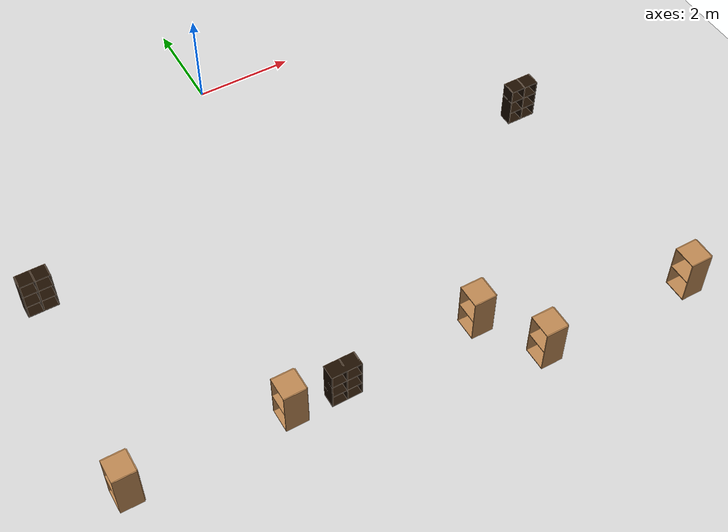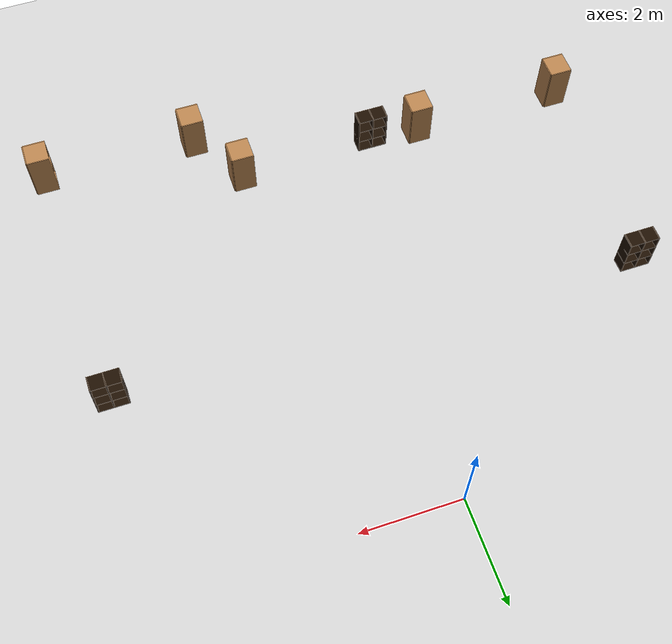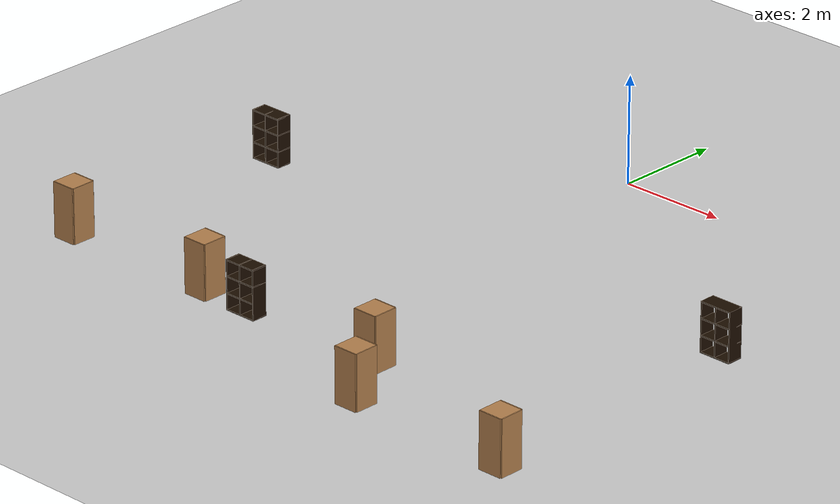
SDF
<sdf version="1.6">
 <world name="default">
  <model name="ground_plane">
   <static>1</static>
   <link name="link">
    <collision name="collision">
     <geometry><plane><normal>0 0 1</normal><size>100 100</size></plane></geometry>
     <surface>
      <contact><collide_bitmask>65535</collide_bitmask></contact>
      <friction><ode><mu>100</mu><mu2>50</mu2></ode></friction>
     </surface>
    </collision>
    <visual name="visual">
     <cast_shadows>0</cast_shadows>
     <geometry><plane><normal>0 0 1</normal><size>100 100</size></plane></geometry>
     <material>
      <script><uri>file://media/materials/scripts/gazebo.material</uri><name>Gazebo/Grey</name></script>
     </material>
    </visual>
   </link>
  </model>
  <model name="cabinet">
   <static>1</static>
   <link name="cabinet_bottom_plate">
    <inertial>
     <pose>0 0 -1 0 -0 0</pose>
     <inertia><ixx>2.05</ixx><ixy>0</ixy><ixz>0</ixz><iyy>2.05</iyy><iyz>0</iyz><izz>2.05</izz></inertia>
     <mass>25</mass>
    </inertial>
    <collision name="cabinet_bottom_plate_geom">
     <pose>0 0 0.01 0 -0 0</pose>
     <geometry><box><size>0.45 0.45 0.02</size></box></geometry>
    </collision>
    <visual name="cabinet_bottom_plate_geom_visual">
     <pose>0 0 0.01 0 -0 0</pose>
     <geometry><box><size>0.45 0.45 0.02</size></box></geometry>
     <material>
      <script><uri>file://media/materials/scripts/gazebo.material</uri><name>Gazebo/Wood</name></script>
     </material>
    </visual>
    <collision name="cabinet_bottom_plate_geom_cabinet_back_plate">
     <pose>0.235 0 0.51 0 -0 0</pose>
     <geometry><box><size>0.02 0.45 1.02</size></box></geometry>
    </collision>
    <visual name="cabinet_bottom_plate_geom_cabinet_back_plate_visual">
     <pose>0.235 0 0.51 0 -0 0</pose>
     <geometry><box><size>0.02 0.45 1.02</size></box></geometry>
     <material>
      <script><uri>file://media/materials/scripts/gazebo.material</uri><name>Gazebo/Wood</name></script>
     </material>
    </visual>
    <collision name="cabinet_bottom_plate_geom_cabinet_left_plate">
     <pose>0 0.235 0.51 0 -0 0</pose>
     <geometry><box><size>0.45 0.02 1.02</size></box></geometry>
    </collision>
    <visual name="cabinet_bottom_plate_geom_cabinet_left_plate_visual">
     <pose>0 0.235 0.51 0 -0 0</pose>
     <geometry><box><size>0.45 0.02 1.02</size></box></geometry>
     <material>
      <script><uri>file://media/materials/scripts/gazebo.material</uri><name>Gazebo/Wood</name></script>
     </material>
    </visual>
    <collision name="cabinet_bottom_plate_geom_cabinet_middle_plate">
     <pose>0 0 0.51 0 -0 0</pose>
     <geometry><box><size>0.45 0.45 0.02</size></box></geometry>
    </collision>
    <visual name="cabinet_bottom_plate_geom_cabinet_middle_plate_visual">
     <pose>0 0 0.51 0 -0 0</pose>
     <geometry><box><size>0.45 0.45 0.02</size></box></geometry>
     <material>
      <script><uri>file://media/materials/scripts/gazebo.material</uri><name>Gazebo/Wood</name></script>
     </material>
    </visual>
    <collision name="cabinet_bottom_plate_geom_cabinet_right_plate">
     <pose>0 -0.235 0.51 0 -0 0</pose>
     <geometry><box><size>0.45 0.02 1.02</size></box></geometry>
    </collision>
    <visual name="cabinet_bottom_plate_geom_cabinet_right_plate_visual">
     <pose>0 -0.235 0.51 0 -0 0</pose>
     <geometry><box><size>0.45 0.02 1.02</size></box></geometry>
     <material>
      <script><uri>file://media/materials/scripts/gazebo.material</uri><name>Gazebo/Wood</name></script>
     </material>
    </visual>
    <collision name="cabinet_bottom_plate_geom_cabinet_top_plate">
     <pose>0 0 1.01 0 -0 0</pose>
     <geometry><box><size>0.45 0.45 0.02</size></box></geometry>
    </collision>
    <visual name="cabinet_bottom_plate_geom_cabinet_top_plate_visual">
     <pose>0 0 1.01 0 -0 0</pose>
     <geometry><box><size>0.45 0.45 0.02</size></box></geometry>
     <material>
      <script><uri>file://media/materials/scripts/gazebo.material</uri><name>Gazebo/Wood</name></script>
     </material>
    </visual>
   </link>
   <pose>-5.20758 -7.98036 0 0 -0 0</pose>
  </model>
  <model name="cabinet_0">
   <static>1</static>
   <link name="cabinet_bottom_plate">
    <inertial>
     <pose>0 0 -1 0 -0 0</pose>
     <inertia><ixx>2.05</ixx><ixy>0</ixy><ixz>0</ixz><iyy>2.05</iyy><iyz>0</iyz><izz>2.05</izz></inertia>
     <mass>25</mass>
    </inertial>
    <collision name="cabinet_bottom_plate_geom">
     <pose>0 0 0.01 0 -0 0</pose>
     <geometry><box><size>0.45 0.45 0.02</size></box></geometry>
    </collision>
    <visual name="cabinet_bottom_plate_geom_visual">
     <pose>0 0 0.01 0 -0 0</pose>
     <geometry><box><size>0.45 0.45 0.02</size></box></geometry>
     <material>
      <script><uri>file://media/materials/scripts/gazebo.material</uri><name>Gazebo/Wood</name></script>
     </material>
    </visual>
    <collision name="cabinet_bottom_plate_geom_cabinet_back_plate">
     <pose>0.235 0 0.51 0 -0 0</pose>
     <geometry><box><size>0.02 0.45 1.02</size></box></geometry>
    </collision>
    <visual name="cabinet_bottom_plate_geom_cabinet_back_plate_visual">
     <pose>0.235 0 0.51 0 -0 0</pose>
     <geometry><box><size>0.02 0.45 1.02</size></box></geometry>
     <material>
      <script><uri>file://media/materials/scripts/gazebo.material</uri><name>Gazebo/Wood</name></script>
     </material>
    </visual>
    <collision name="cabinet_bottom_plate_geom_cabinet_left_plate">
     <pose>0 0.235 0.51 0 -0 0</pose>
     <geometry><box><size>0.45 0.02 1.02</size></box></geometry>
    </collision>
    <visual name="cabinet_bottom_plate_geom_cabinet_left_plate_visual">
     <pose>0 0.235 0.51 0 -0 0</pose>
     <geometry><box><size>0.45 0.02 1.02</size></box></geometry>
     <material>
      <script><uri>file://media/materials/scripts/gazebo.material</uri><name>Gazebo/Wood</name></script>
     </material>
    </visual>
    <collision name="cabinet_bottom_plate_geom_cabinet_middle_plate">
     <pose>0 0 0.51 0 -0 0</pose>
     <geometry><box><size>0.45 0.45 0.02</size></box></geometry>
    </collision>
    <visual name="cabinet_bottom_plate_geom_cabinet_middle_plate_visual">
     <pose>0 0 0.51 0 -0 0</pose>
     <geometry><box><size>0.45 0.45 0.02</size></box></geometry>
     <material>
      <script><uri>file://media/materials/scripts/gazebo.material</uri><name>Gazebo/Wood</name></script>
     </material>
    </visual>
    <collision name="cabinet_bottom_plate_geom_cabinet_right_plate">
     <pose>0 -0.235 0.51 0 -0 0</pose>
     <geometry><box><size>0.45 0.02 1.02</size></box></geometry>
    </collision>
    <visual name="cabinet_bottom_plate_geom_cabinet_right_plate_visual">
     <pose>0 -0.235 0.51 0 -0 0</pose>
     <geometry><box><size>0.45 0.02 1.02</size></box></geometry>
     <material>
      <script><uri>file://media/materials/scripts/gazebo.material</uri><name>Gazebo/Wood</name></script>
     </material>
    </visual>
    <collision name="cabinet_bottom_plate_geom_cabinet_top_plate">
     <pose>0 0 1.01 0 -0 0</pose>
     <geometry><box><size>0.45 0.45 0.02</size></box></geometry>
    </collision>
    <visual name="cabinet_bottom_plate_geom_cabinet_top_plate_visual">
     <pose>0 0 1.01 0 -0 0</pose>
     <geometry><box><size>0.45 0.45 0.02</size></box></geometry>
     <material>
      <script><uri>file://media/materials/scripts/gazebo.material</uri><name>Gazebo/Wood</name></script>
     </material>
    </visual>
   </link>
   <pose>-2.09411 -7.98099 0 0 -0 0</pose>
  </model>
  <model name="cabinet_1">
   <static>1</static>
   <link name="cabinet_bottom_plate">
    <inertial>
     <pose>0 0 -1 0 -0 0</pose>
     <inertia><ixx>2.05</ixx><ixy>0</ixy><ixz>0</ixz><iyy>2.05</iyy><iyz>0</iyz><izz>2.05</izz></inertia>
     <mass>25</mass>
    </inertial>
    <collision name="cabinet_bottom_plate_geom">
     <pose>0 0 0.01 0 -0 0</pose>
     <geometry><box><size>0.45 0.45 0.02</size></box></geometry>
    </collision>
    <visual name="cabinet_bottom_plate_geom_visual">
     <pose>0 0 0.01 0 -0 0</pose>
     <geometry><box><size>0.45 0.45 0.02</size></box></geometry>
     <material>
      <script><uri>file://media/materials/scripts/gazebo.material</uri><name>Gazebo/Wood</name></script>
     </material>
    </visual>
    <collision name="cabinet_bottom_plate_geom_cabinet_back_plate">
     <pose>0.235 0 0.51 0 -0 0</pose>
     <geometry><box><size>0.02 0.45 1.02</size></box></geometry>
    </collision>
    <visual name="cabinet_bottom_plate_geom_cabinet_back_plate_visual">
     <pose>0.235 0 0.51 0 -0 0</pose>
     <geometry><box><size>0.02 0.45 1.02</size></box></geometry>
     <material>
      <script><uri>file://media/materials/scripts/gazebo.material</uri><name>Gazebo/Wood</name></script>
     </material>
    </visual>
    <collision name="cabinet_bottom_plate_geom_cabinet_left_plate">
     <pose>0 0.235 0.51 0 -0 0</pose>
     <geometry><box><size>0.45 0.02 1.02</size></box></geometry>
    </collision>
    <visual name="cabinet_bottom_plate_geom_cabinet_left_plate_visual">
     <pose>0 0.235 0.51 0 -0 0</pose>
     <geometry><box><size>0.45 0.02 1.02</size></box></geometry>
     <material>
      <script><uri>file://media/materials/scripts/gazebo.material</uri><name>Gazebo/Wood</name></script>
     </material>
    </visual>
    <collision name="cabinet_bottom_plate_geom_cabinet_middle_plate">
     <pose>0 0 0.51 0 -0 0</pose>
     <geometry><box><size>0.45 0.45 0.02</size></box></geometry>
    </collision>
    <visual name="cabinet_bottom_plate_geom_cabinet_middle_plate_visual">
     <pose>0 0 0.51 0 -0 0</pose>
     <geometry><box><size>0.45 0.45 0.02</size></box></geometry>
     <material>
      <script><uri>file://media/materials/scripts/gazebo.material</uri><name>Gazebo/Wood</name></script>
     </material>
    </visual>
    <collision name="cabinet_bottom_plate_geom_cabinet_right_plate">
     <pose>0 -0.235 0.51 0 -0 0</pose>
     <geometry><box><size>0.45 0.02 1.02</size></box></geometry>
    </collision>
    <visual name="cabinet_bottom_plate_geom_cabinet_right_plate_visual">
     <pose>0 -0.235 0.51 0 -0 0</pose>
     <geometry><box><size>0.45 0.02 1.02</size></box></geometry>
     <material>
      <script><uri>file://media/materials/scripts/gazebo.material</uri><name>Gazebo/Wood</name></script>
     </material>
    </visual>
    <collision name="cabinet_bottom_plate_geom_cabinet_top_plate">
     <pose>0 0 1.01 0 -0 0</pose>
     <geometry><box><size>0.45 0.45 0.02</size></box></geometry>
    </collision>
    <visual name="cabinet_bottom_plate_geom_cabinet_top_plate_visual">
     <pose>0 0 1.01 0 -0 0</pose>
     <geometry><box><size>0.45 0.45 0.02</size></box></geometry>
     <material>
      <script><uri>file://media/materials/scripts/gazebo.material</uri><name>Gazebo/Wood</name></script>
     </material>
    </visual>
   </link>
   <pose>2.48169 -9.13605 0 0 -0 0</pose>
  </model>
  <model name="cabinet_2">
   <static>1</static>
   <link name="cabinet_bottom_plate">
    <inertial>
     <pose>0 0 -1 0 -0 0</pose>
     <inertia><ixx>2.05</ixx><ixy>0</ixy><ixz>0</ixz><iyy>2.05</iyy><iyz>0</iyz><izz>2.05</izz></inertia>
     <mass>25</mass>
    </inertial>
    <collision name="cabinet_bottom_plate_geom">
     <pose>0 0 0.01 0 -0 0</pose>
     <geometry><box><size>0.45 0.45 0.02</size></box></geometry>
    </collision>
    <visual name="cabinet_bottom_plate_geom_visual">
     <pose>0 0 0.01 0 -0 0</pose>
     <geometry><box><size>0.45 0.45 0.02</size></box></geometry>
     <material>
      <script><uri>file://media/materials/scripts/gazebo.material</uri><name>Gazebo/Wood</name></script>
     </material>
    </visual>
    <collision name="cabinet_bottom_plate_geom_cabinet_back_plate">
     <pose>0.235 0 0.51 0 -0 0</pose>
     <geometry><box><size>0.02 0.45 1.02</size></box></geometry>
    </collision>
    <visual name="cabinet_bottom_plate_geom_cabinet_back_plate_visual">
     <pose>0.235 0 0.51 0 -0 0</pose>
     <geometry><box><size>0.02 0.45 1.02</size></box></geometry>
     <material>
      <script><uri>file://media/materials/scripts/gazebo.material</uri><name>Gazebo/Wood</name></script>
     </material>
    </visual>
    <collision name="cabinet_bottom_plate_geom_cabinet_left_plate">
     <pose>0 0.235 0.51 0 -0 0</pose>
     <geometry><box><size>0.45 0.02 1.02</size></box></geometry>
    </collision>
    <visual name="cabinet_bottom_plate_geom_cabinet_left_plate_visual">
     <pose>0 0.235 0.51 0 -0 0</pose>
     <geometry><box><size>0.45 0.02 1.02</size></box></geometry>
     <material>
      <script><uri>file://media/materials/scripts/gazebo.material</uri><name>Gazebo/Wood</name></script>
     </material>
    </visual>
    <collision name="cabinet_bottom_plate_geom_cabinet_middle_plate">
     <pose>0 0 0.51 0 -0 0</pose>
     <geometry><box><size>0.45 0.45 0.02</size></box></geometry>
    </collision>
    <visual name="cabinet_bottom_plate_geom_cabinet_middle_plate_visual">
     <pose>0 0 0.51 0 -0 0</pose>
     <geometry><box><size>0.45 0.45 0.02</size></box></geometry>
     <material>
      <script><uri>file://media/materials/scripts/gazebo.material</uri><name>Gazebo/Wood</name></script>
     </material>
    </visual>
    <collision name="cabinet_bottom_plate_geom_cabinet_right_plate">
     <pose>0 -0.235 0.51 0 -0 0</pose>
     <geometry><box><size>0.45 0.02 1.02</size></box></geometry>
    </collision>
    <visual name="cabinet_bottom_plate_geom_cabinet_right_plate_visual">
     <pose>0 -0.235 0.51 0 -0 0</pose>
     <geometry><box><size>0.45 0.02 1.02</size></box></geometry>
     <material>
      <script><uri>file://media/materials/scripts/gazebo.material</uri><name>Gazebo/Wood</name></script>
     </material>
    </visual>
    <collision name="cabinet_bottom_plate_geom_cabinet_top_plate">
     <pose>0 0 1.01 0 -0 0</pose>
     <geometry><box><size>0.45 0.45 0.02</size></box></geometry>
    </collision>
    <visual name="cabinet_bottom_plate_geom_cabinet_top_plate_visual">
     <pose>0 0 1.01 0 -0 0</pose>
     <geometry><box><size>0.45 0.45 0.02</size></box></geometry>
     <material>
      <script><uri>file://media/materials/scripts/gazebo.material</uri><name>Gazebo/Wood</name></script>
     </material>
    </visual>
   </link>
   <pose>5.65055 -9.1933 0 0 -0 0</pose>
  </model>
  <model name="6_Cube_StorageE">
   <link name="Wall_0">
    <pose>0 0 0.01 0 -0 0</pose>
    <inertial>
     <mass>1.6201</mass>
     <inertia><ixx>0.0119</ixx><iyy>0.0631</iyy><izz>0.0513</izz><ixy>0</ixy><ixz>0</ixz><iyz>0</iyz></inertia>
    </inertial>
    <collision name="Wall_0_Collision"><geometry><box><size>0.616 0.296 0.02</size></box></geometry></collision>
    <visual name="Wall_0_Visual">
     <geometry><box><size>0.616 0.296 0.02</size></box></geometry>
     <material>
      <script><uri>file://media/materials/scripts/gazebo.material</uri><name>Gazebo/Grey</name></script>
      <ambient>0.105882 0.0509804 0 1</ambient>
     </material>
    </visual>
   </link>
   <joint name="0_2" type="fixed">
    <pose>-0.308 0 0 0 -0 0</pose>
    <parent>Wall_2</parent>
    <child>Wall_0</child>
    <axis>
     <xyz>1 0 0</xyz>
     <use_parent_model_frame>0</use_parent_model_frame>
     <limit><lower>-1e+16</lower><upper>1e+16</upper></limit>
    </axis>
   </joint>
   <joint name="0_12" type="fixed">
    <parent>Wall_12</parent>
    <child>Wall_0</child>
    <axis>
     <xyz>0 0 1</xyz>
     <use_parent_model_frame>0</use_parent_model_frame>
     <limit><lower>-1e+16</lower><upper>1e+16</upper></limit>
    </axis>
   </joint>
   <joint name="0_4" type="fixed">
    <pose>0.308 0 0 0 -0 0</pose>
    <parent>Wall_4</parent>
    <child>Wall_0</child>
    <axis>
     <xyz>1 0 0</xyz>
     <use_parent_model_frame>0</use_parent_model_frame>
     <limit><lower>-1e+16</lower><upper>1e+16</upper></limit>
    </axis>
   </joint>
   <link name="Wall_10">
    <pose>0 0 0.61 0 -0 0</pose>
    <inertial>
     <mass>1.6201</mass>
     <inertia><ixx>0.0119</ixx><iyy>0.0631</iyy><izz>0.0513</izz><ixy>0</ixy><ixz>0</ixz><iyz>0</iyz></inertia>
    </inertial>
    <collision name="Wall_10_Collision"><geometry><box><size>0.616 0.296 0.02</size></box></geometry></collision>
    <visual name="Wall_10_Visual">
     <geometry><box><size>0.616 0.296 0.02</size></box></geometry>
     <material>
      <script><uri>file://media/materials/scripts/gazebo.material</uri><name>Gazebo/Grey</name></script>
      <ambient>0.105882 0.0509804 0 1</ambient>
     </material>
    </visual>
   </link>
   <joint name="10_2" type="fixed">
    <pose>-0.308 0 0 0 -0 0</pose>
    <parent>Wall_2</parent>
    <child>Wall_10</child>
    <axis>
     <xyz>1 0 0</xyz>
     <use_parent_model_frame>0</use_parent_model_frame>
     <limit><lower>-1e+16</lower><upper>1e+16</upper></limit>
    </axis>
   </joint>
   <joint name="10_12" type="fixed">
    <parent>Wall_12</parent>
    <child>Wall_10</child>
    <axis>
     <xyz>0 0 1</xyz>
     <use_parent_model_frame>0</use_parent_model_frame>
     <limit><lower>-1e+16</lower><upper>1e+16</upper></limit>
    </axis>
   </joint>
   <joint name="10_4" type="fixed">
    <pose>0.308 0 0 0 -0 0</pose>
    <parent>Wall_4</parent>
    <child>Wall_10</child>
    <axis>
     <xyz>1 0 0</xyz>
     <use_parent_model_frame>0</use_parent_model_frame>
     <limit><lower>-1e+16</lower><upper>1e+16</upper></limit>
    </axis>
   </joint>
   <link name="Wall_12">
    <pose>0 0 0.4575 0 -0 0</pose>
    <inertial>
     <mass>2.4065</mass>
     <inertia><ixx>0.0177</ixx><iyy>0.1855</iyy><izz>0.168</izz><ixy>0</ixy><ixz>0</ixz><iyz>0</iyz></inertia>
    </inertial>
    <collision name="Wall_12_Collision"><geometry><box><size>0.02 0.296 0.915</size></box></geometry></collision>
    <visual name="Wall_12_Visual">
     <geometry><box><size>0.02 0.296 0.915</size></box></geometry>
     <material>
      <script><uri>file://media/materials/scripts/gazebo.material</uri><name>Gazebo/Grey</name></script>
      <ambient>0.105882 0.0509804 0 1</ambient>
     </material>
    </visual>
   </link>
   <link name="Wall_2">
    <pose>-0.298 0 0.4575 0 -0 0</pose>
    <inertial>
     <mass>2.4065</mass>
     <inertia><ixx>0.0177</ixx><iyy>0.1855</iyy><izz>0.168</izz><ixy>0</ixy><ixz>0</ixz><iyz>0</iyz></inertia>
    </inertial>
    <collision name="Wall_2_Collision"><geometry><box><size>0.02 0.296 0.915</size></box></geometry></collision>
    <visual name="Wall_2_Visual">
     <geometry><box><size>0.02 0.296 0.915</size></box></geometry>
     <material>
      <script><uri>file://media/materials/scripts/gazebo.material</uri><name>Gazebo/Grey</name></script>
      <ambient>0.105882 0.0509804 0 1</ambient>
     </material>
    </visual>
   </link>
   <link name="Wall_4">
    <pose>0.298 0 0.4575 0 -0 0</pose>
    <inertial>
     <mass>2.4065</mass>
     <inertia><ixx>0.0177</ixx><iyy>0.1855</iyy><izz>0.168</izz><ixy>0</ixy><ixz>0</ixz><iyz>0</iyz></inertia>
    </inertial>
    <collision name="Wall_4_Collision"><geometry><box><size>0.02 0.296 0.915</size></box></geometry></collision>
    <visual name="Wall_4_Visual">
     <geometry><box><size>0.02 0.296 0.915</size></box></geometry>
     <material>
      <script><uri>file://media/materials/scripts/gazebo.material</uri><name>Gazebo/Grey</name></script>
      <ambient>0.105882 0.0509804 0 1</ambient>
     </material>
    </visual>
   </link>
   <link name="Wall_6">
    <pose>0 0 0.905 0 -0 0</pose>
    <inertial>
     <mass>1.6201</mass>
     <inertia><ixx>0.0119</ixx><iyy>0.0631</iyy><izz>0.0513</izz><ixy>0</ixy><ixz>0</ixz><iyz>0</iyz></inertia>
    </inertial>
    <collision name="Wall_6_Collision"><geometry><box><size>0.616 0.296 0.02</size></box></geometry></collision>
    <visual name="Wall_6_Visual">
     <geometry><box><size>0.616 0.296 0.02</size></box></geometry>
     <material>
      <script><uri>file://media/materials/scripts/gazebo.material</uri><name>Gazebo/Grey</name></script>
      <ambient>0.105882 0.0509804 0 1</ambient>
     </material>
    </visual>
   </link>
   <joint name="6_2" type="fixed">
    <pose>-0.308 0 0 0 -0 0</pose>
    <parent>Wall_2</parent>
    <child>Wall_6</child>
    <axis>
     <xyz>2 0 0</xyz>
     <use_parent_model_frame>0</use_parent_model_frame>
     <limit><lower>-1e+16</lower><upper>1e+16</upper></limit>
    </axis>
   </joint>
   <joint name="6_12" type="fixed">
    <parent>Wall_12</parent>
    <child>Wall_6</child>
    <axis>
     <xyz>0 0 1</xyz>
     <use_parent_model_frame>0</use_parent_model_frame>
     <limit><lower>-1e+16</lower><upper>1e+16</upper></limit>
    </axis>
   </joint>
   <joint name="6_4" type="fixed">
    <pose>0.308 0 0 0 -0 0</pose>
    <parent>Wall_4</parent>
    <child>Wall_6</child>
    <axis>
     <xyz>1 0 0</xyz>
     <use_parent_model_frame>0</use_parent_model_frame>
     <limit><lower>-1e+16</lower><upper>1e+16</upper></limit>
    </axis>
   </joint>
   <link name="Wall_8">
    <pose>0 0 0.305 0 -0 0</pose>
    <inertial>
     <mass>1.6201</mass>
     <inertia><ixx>0.0119</ixx><iyy>0.0631</iyy><izz>0.0513</izz><ixy>0</ixy><ixz>0</ixz><iyz>0</iyz></inertia>
    </inertial>
    <collision name="Wall_8_Collision"><geometry><box><size>0.616 0.296 0.02</size></box></geometry></collision>
    <visual name="Wall_8_Visual">
     <geometry><box><size>0.616 0.296 0.02</size></box></geometry>
     <material>
      <script><uri>file://media/materials/scripts/gazebo.material</uri><name>Gazebo/Grey</name></script>
      <ambient>0.105882 0.0509804 0 1</ambient>
     </material>
    </visual>
   </link>
   <joint name="8_2" type="fixed">
    <pose>-0.308 0 0 0 -0 0</pose>
    <parent>Wall_2</parent>
    <child>Wall_8</child>
    <axis>
     <xyz>1 0 0</xyz>
     <use_parent_model_frame>0</use_parent_model_frame>
     <limit><lower>-1e+16</lower><upper>1e+16</upper></limit>
    </axis>
   </joint>
   <joint name="8_12" type="fixed">
    <parent>Wall_12</parent>
    <child>Wall_8</child>
    <axis>
     <xyz>0 0 1</xyz>
     <use_parent_model_frame>0</use_parent_model_frame>
     <limit><lower>-1e+16</lower><upper>1e+16</upper></limit>
    </axis>
   </joint>
   <joint name="8_4" type="fixed">
    <pose>0.308 0 0 0 -0 0</pose>
    <parent>Wall_4</parent>
    <child>Wall_8</child>
    <axis>
     <xyz>1 0 0</xyz>
     <use_parent_model_frame>0</use_parent_model_frame>
     <limit><lower>-1e+16</lower><upper>1e+16</upper></limit>
    </axis>
   </joint>
   <static>1</static>
   <pose>-5.01324 -3.5483 0 0 -0 0</pose>
  </model>
  <model name="6_Cube_StorageE_0">
   <link name="Wall_0">
    <pose>0 0 0.01 0 -0 0</pose>
    <inertial>
     <mass>1.6201</mass>
     <inertia><ixx>0.0119</ixx><iyy>0.0631</iyy><izz>0.0513</izz><ixy>0</ixy><ixz>0</ixz><iyz>0</iyz></inertia>
    </inertial>
    <collision name="Wall_0_Collision"><geometry><box><size>0.616 0.296 0.02</size></box></geometry></collision>
    <visual name="Wall_0_Visual">
     <geometry><box><size>0.616 0.296 0.02</size></box></geometry>
     <material>
      <script><uri>file://media/materials/scripts/gazebo.material</uri><name>Gazebo/Grey</name></script>
      <ambient>0.105882 0.0509804 0 1</ambient>
     </material>
    </visual>
   </link>
   <joint name="0_2" type="fixed">
    <pose>-0.308 0 0 0 -0 0</pose>
    <parent>Wall_2</parent>
    <child>Wall_0</child>
    <axis>
     <xyz>1 0 0</xyz>
     <use_parent_model_frame>0</use_parent_model_frame>
     <limit><lower>-1e+16</lower><upper>1e+16</upper></limit>
    </axis>
   </joint>
   <joint name="0_12" type="fixed">
    <parent>Wall_12</parent>
    <child>Wall_0</child>
    <axis>
     <xyz>0 0 1</xyz>
     <use_parent_model_frame>0</use_parent_model_frame>
     <limit><lower>-1e+16</lower><upper>1e+16</upper></limit>
    </axis>
   </joint>
   <joint name="0_4" type="fixed">
    <pose>0.308 0 0 0 -0 0</pose>
    <parent>Wall_4</parent>
    <child>Wall_0</child>
    <axis>
     <xyz>1 0 0</xyz>
     <use_parent_model_frame>0</use_parent_model_frame>
     <limit><lower>-1e+16</lower><upper>1e+16</upper></limit>
    </axis>
   </joint>
   <link name="Wall_10">
    <pose>0 0 0.61 0 -0 0</pose>
    <inertial>
     <mass>1.6201</mass>
     <inertia><ixx>0.0119</ixx><iyy>0.0631</iyy><izz>0.0513</izz><ixy>0</ixy><ixz>0</ixz><iyz>0</iyz></inertia>
    </inertial>
    <collision name="Wall_10_Collision"><geometry><box><size>0.616 0.296 0.02</size></box></geometry></collision>
    <visual name="Wall_10_Visual">
     <geometry><box><size>0.616 0.296 0.02</size></box></geometry>
     <material>
      <script><uri>file://media/materials/scripts/gazebo.material</uri><name>Gazebo/Grey</name></script>
      <ambient>0.105882 0.0509804 0 1</ambient>
     </material>
    </visual>
   </link>
   <joint name="10_2" type="fixed">
    <pose>-0.308 0 0 0 -0 0</pose>
    <parent>Wall_2</parent>
    <child>Wall_10</child>
    <axis>
     <xyz>1 0 0</xyz>
     <use_parent_model_frame>0</use_parent_model_frame>
     <limit><lower>-1e+16</lower><upper>1e+16</upper></limit>
    </axis>
   </joint>
   <joint name="10_12" type="fixed">
    <parent>Wall_12</parent>
    <child>Wall_10</child>
    <axis>
     <xyz>0 0 1</xyz>
     <use_parent_model_frame>0</use_parent_model_frame>
     <limit><lower>-1e+16</lower><upper>1e+16</upper></limit>
    </axis>
   </joint>
   <joint name="10_4" type="fixed">
    <pose>0.308 0 0 0 -0 0</pose>
    <parent>Wall_4</parent>
    <child>Wall_10</child>
    <axis>
     <xyz>1 0 0</xyz>
     <use_parent_model_frame>0</use_parent_model_frame>
     <limit><lower>-1e+16</lower><upper>1e+16</upper></limit>
    </axis>
   </joint>
   <link name="Wall_12">
    <pose>0 0 0.4575 0 -0 0</pose>
    <inertial>
     <mass>2.4065</mass>
     <inertia><ixx>0.0177</ixx><iyy>0.1855</iyy><izz>0.168</izz><ixy>0</ixy><ixz>0</ixz><iyz>0</iyz></inertia>
    </inertial>
    <collision name="Wall_12_Collision"><geometry><box><size>0.02 0.296 0.915</size></box></geometry></collision>
    <visual name="Wall_12_Visual">
     <geometry><box><size>0.02 0.296 0.915</size></box></geometry>
     <material>
      <script><uri>file://media/materials/scripts/gazebo.material</uri><name>Gazebo/Grey</name></script>
      <ambient>0.105882 0.0509804 0 1</ambient>
     </material>
    </visual>
   </link>
   <link name="Wall_2">
    <pose>-0.298 0 0.4575 0 -0 0</pose>
    <inertial>
     <mass>2.4065</mass>
     <inertia><ixx>0.0177</ixx><iyy>0.1855</iyy><izz>0.168</izz><ixy>0</ixy><ixz>0</ixz><iyz>0</iyz></inertia>
    </inertial>
    <collision name="Wall_2_Collision"><geometry><box><size>0.02 0.296 0.915</size></box></geometry></collision>
    <visual name="Wall_2_Visual">
     <geometry><box><size>0.02 0.296 0.915</size></box></geometry>
     <material>
      <script><uri>file://media/materials/scripts/gazebo.material</uri><name>Gazebo/Grey</name></script>
      <ambient>0.105882 0.0509804 0 1</ambient>
     </material>
    </visual>
   </link>
   <link name="Wall_4">
    <pose>0.298 0 0.4575 0 -0 0</pose>
    <inertial>
     <mass>2.4065</mass>
     <inertia><ixx>0.0177</ixx><iyy>0.1855</iyy><izz>0.168</izz><ixy>0</ixy><ixz>0</ixz><iyz>0</iyz></inertia>
    </inertial>
    <collision name="Wall_4_Collision"><geometry><box><size>0.02 0.296 0.915</size></box></geometry></collision>
    <visual name="Wall_4_Visual">
     <geometry><box><size>0.02 0.296 0.915</size></box></geometry>
     <material>
      <script><uri>file://media/materials/scripts/gazebo.material</uri><name>Gazebo/Grey</name></script>
      <ambient>0.105882 0.0509804 0 1</ambient>
     </material>
    </visual>
   </link>
   <link name="Wall_6">
    <pose>0 0 0.905 0 -0 0</pose>
    <inertial>
     <mass>1.6201</mass>
     <inertia><ixx>0.0119</ixx><iyy>0.0631</iyy><izz>0.0513</izz><ixy>0</ixy><ixz>0</ixz><iyz>0</iyz></inertia>
    </inertial>
    <collision name="Wall_6_Collision"><geometry><box><size>0.616 0.296 0.02</size></box></geometry></collision>
    <visual name="Wall_6_Visual">
     <geometry><box><size>0.616 0.296 0.02</size></box></geometry>
     <material>
      <script><uri>file://media/materials/scripts/gazebo.material</uri><name>Gazebo/Grey</name></script>
      <ambient>0.105882 0.0509804 0 1</ambient>
     </material>
    </visual>
   </link>
   <joint name="6_2" type="fixed">
    <pose>-0.308 0 0 0 -0 0</pose>
    <parent>Wall_2</parent>
    <child>Wall_6</child>
    <axis>
     <xyz>2 0 0</xyz>
     <use_parent_model_frame>0</use_parent_model_frame>
     <limit><lower>-1e+16</lower><upper>1e+16</upper></limit>
    </axis>
   </joint>
   <joint name="6_12" type="fixed">
    <parent>Wall_12</parent>
    <child>Wall_6</child>
    <axis>
     <xyz>0 0 1</xyz>
     <use_parent_model_frame>0</use_parent_model_frame>
     <limit><lower>-1e+16</lower><upper>1e+16</upper></limit>
    </axis>
   </joint>
   <joint name="6_4" type="fixed">
    <pose>0.308 0 0 0 -0 0</pose>
    <parent>Wall_4</parent>
    <child>Wall_6</child>
    <axis>
     <xyz>1 0 0</xyz>
     <use_parent_model_frame>0</use_parent_model_frame>
     <limit><lower>-1e+16</lower><upper>1e+16</upper></limit>
    </axis>
   </joint>
   <link name="Wall_8">
    <pose>0 0 0.305 0 -0 0</pose>
    <inertial>
     <mass>1.6201</mass>
     <inertia><ixx>0.0119</ixx><iyy>0.0631</iyy><izz>0.0513</izz><ixy>0</ixy><ixz>0</ixz><iyz>0</iyz></inertia>
    </inertial>
    <collision name="Wall_8_Collision"><geometry><box><size>0.616 0.296 0.02</size></box></geometry></collision>
    <visual name="Wall_8_Visual">
     <geometry><box><size>0.616 0.296 0.02</size></box></geometry>
     <material>
      <script><uri>file://media/materials/scripts/gazebo.material</uri><name>Gazebo/Grey</name></script>
      <ambient>0.105882 0.0509804 0 1</ambient>
     </material>
    </visual>
   </link>
   <joint name="8_2" type="fixed">
    <pose>-0.308 0 0 0 -0 0</pose>
    <parent>Wall_2</parent>
    <child>Wall_8</child>
    <axis>
     <xyz>1 0 0</xyz>
     <use_parent_model_frame>0</use_parent_model_frame>
     <limit><lower>-1e+16</lower><upper>1e+16</upper></limit>
    </axis>
   </joint>
   <joint name="8_12" type="fixed">
    <parent>Wall_12</parent>
    <child>Wall_8</child>
    <axis>
     <xyz>0 0 1</xyz>
     <use_parent_model_frame>0</use_parent_model_frame>
     <limit><lower>-1e+16</lower><upper>1e+16</upper></limit>
    </axis>
   </joint>
   <joint name="8_4" type="fixed">
    <pose>0.308 0 0 0 -0 0</pose>
    <parent>Wall_4</parent>
    <child>Wall_8</child>
    <axis>
     <xyz>1 0 0</xyz>
     <use_parent_model_frame>0</use_parent_model_frame>
     <limit><lower>-1e+16</lower><upper>1e+16</upper></limit>
    </axis>
   </joint>
   <static>1</static>
   <pose>5.47729 -3.86895 0 0 -0 0</pose>
  </model>
  <model name="cabinet_3">
   <static>1</static>
   <link name="cabinet_bottom_plate">
    <inertial>
     <pose>0 0 -1 0 -0 0</pose>
     <inertia><ixx>2.05</ixx><ixy>0</ixy><ixz>0</ixz><iyy>2.05</iyy><iyz>0</iyz><izz>2.05</izz></inertia>
     <mass>25</mass>
    </inertial>
    <collision name="cabinet_bottom_plate_geom">
     <pose>0 0 0.01 0 -0 0</pose>
     <geometry><box><size>0.45 0.45 0.02</size></box></geometry>
    </collision>
    <visual name="cabinet_bottom_plate_geom_visual">
     <pose>0 0 0.01 0 -0 0</pose>
     <geometry><box><size>0.45 0.45 0.02</size></box></geometry>
     <material>
      <script><uri>file://media/materials/scripts/gazebo.material</uri><name>Gazebo/Wood</name></script>
     </material>
    </visual>
    <collision name="cabinet_bottom_plate_geom_cabinet_back_plate">
     <pose>0.235 0 0.51 0 -0 0</pose>
     <geometry><box><size>0.02 0.45 1.02</size></box></geometry>
    </collision>
    <visual name="cabinet_bottom_plate_geom_cabinet_back_plate_visual">
     <pose>0.235 0 0.51 0 -0 0</pose>
     <geometry><box><size>0.02 0.45 1.02</size></box></geometry>
     <material>
      <script><uri>file://media/materials/scripts/gazebo.material</uri><name>Gazebo/Wood</name></script>
     </material>
    </visual>
    <collision name="cabinet_bottom_plate_geom_cabinet_left_plate">
     <pose>0 0.235 0.51 0 -0 0</pose>
     <geometry><box><size>0.45 0.02 1.02</size></box></geometry>
    </collision>
    <visual name="cabinet_bottom_plate_geom_cabinet_left_plate_visual">
     <pose>0 0.235 0.51 0 -0 0</pose>
     <geometry><box><size>0.45 0.02 1.02</size></box></geometry>
     <material>
      <script><uri>file://media/materials/scripts/gazebo.material</uri><name>Gazebo/Wood</name></script>
     </material>
    </visual>
    <collision name="cabinet_bottom_plate_geom_cabinet_middle_plate">
     <pose>0 0 0.51 0 -0 0</pose>
     <geometry><box><size>0.45 0.45 0.02</size></box></geometry>
    </collision>
    <visual name="cabinet_bottom_plate_geom_cabinet_middle_plate_visual">
     <pose>0 0 0.51 0 -0 0</pose>
     <geometry><box><size>0.45 0.45 0.02</size></box></geometry>
     <material>
      <script><uri>file://media/materials/scripts/gazebo.material</uri><name>Gazebo/Wood</name></script>
     </material>
    </visual>
    <collision name="cabinet_bottom_plate_geom_cabinet_right_plate">
     <pose>0 -0.235 0.51 0 -0 0</pose>
     <geometry><box><size>0.45 0.02 1.02</size></box></geometry>
    </collision>
    <visual name="cabinet_bottom_plate_geom_cabinet_right_plate_visual">
     <pose>0 -0.235 0.51 0 -0 0</pose>
     <geometry><box><size>0.45 0.02 1.02</size></box></geometry>
     <material>
      <script><uri>file://media/materials/scripts/gazebo.material</uri><name>Gazebo/Wood</name></script>
     </material>
    </visual>
    <collision name="cabinet_bottom_plate_geom_cabinet_top_plate">
     <pose>0 0 1.01 0 -0 0</pose>
     <geometry><box><size>0.45 0.45 0.02</size></box></geometry>
    </collision>
    <visual name="cabinet_bottom_plate_geom_cabinet_top_plate_visual">
     <pose>0 0 1.01 0 -0 0</pose>
     <geometry><box><size>0.45 0.45 0.02</size></box></geometry>
     <material>
      <script><uri>file://media/materials/scripts/gazebo.material</uri><name>Gazebo/Wood</name></script>
     </material>
    </visual>
   </link>
   <pose>1.75483 -7.96089 0 0 -0 0</pose>
  </model>
  <model name="6_Cube_StorageE_1">
   <link name="Wall_0">
    <pose>0 0 0.01 0 -0 0</pose>
    <inertial>
     <mass>1.6201</mass>
     <inertia><ixx>0.0119</ixx><iyy>0.0631</iyy><izz>0.0513</izz><ixy>0</ixy><ixz>0</ixz><iyz>0</iyz></inertia>
    </inertial>
    <collision name="Wall_0_Collision"><geometry><box><size>0.616 0.296 0.02</size></box></geometry></collision>
    <visual name="Wall_0_Visual">
     <geometry><box><size>0.616 0.296 0.02</size></box></geometry>
     <material>
      <script><uri>file://media/materials/scripts/gazebo.material</uri><name>Gazebo/Grey</name></script>
      <ambient>0.105882 0.0509804 0 1</ambient>
     </material>
    </visual>
   </link>
   <joint name="0_2" type="fixed">
    <pose>-0.308 0 0 0 -0 0</pose>
    <parent>Wall_2</parent>
    <child>Wall_0</child>
    <axis>
     <xyz>1 0 0</xyz>
     <use_parent_model_frame>0</use_parent_model_frame>
     <limit><lower>-1e+16</lower><upper>1e+16</upper></limit>
    </axis>
   </joint>
   <joint name="0_12" type="fixed">
    <parent>Wall_12</parent>
    <child>Wall_0</child>
    <axis>
     <xyz>0 0 1</xyz>
     <use_parent_model_frame>0</use_parent_model_frame>
     <limit><lower>-1e+16</lower><upper>1e+16</upper></limit>
    </axis>
   </joint>
   <joint name="0_4" type="fixed">
    <pose>0.308 0 0 0 -0 0</pose>
    <parent>Wall_4</parent>
    <child>Wall_0</child>
    <axis>
     <xyz>1 0 0</xyz>
     <use_parent_model_frame>0</use_parent_model_frame>
     <limit><lower>-1e+16</lower><upper>1e+16</upper></limit>
    </axis>
   </joint>
   <link name="Wall_10">
    <pose>0 0 0.61 0 -0 0</pose>
    <inertial>
     <mass>1.6201</mass>
     <inertia><ixx>0.0119</ixx><iyy>0.0631</iyy><izz>0.0513</izz><ixy>0</ixy><ixz>0</ixz><iyz>0</iyz></inertia>
    </inertial>
    <collision name="Wall_10_Collision"><geometry><box><size>0.616 0.296 0.02</size></box></geometry></collision>
    <visual name="Wall_10_Visual">
     <geometry><box><size>0.616 0.296 0.02</size></box></geometry>
     <material>
      <script><uri>file://media/materials/scripts/gazebo.material</uri><name>Gazebo/Grey</name></script>
      <ambient>0.105882 0.0509804 0 1</ambient>
     </material>
    </visual>
   </link>
   <joint name="10_2" type="fixed">
    <pose>-0.308 0 0 0 -0 0</pose>
    <parent>Wall_2</parent>
    <child>Wall_10</child>
    <axis>
     <xyz>1 0 0</xyz>
     <use_parent_model_frame>0</use_parent_model_frame>
     <limit><lower>-1e+16</lower><upper>1e+16</upper></limit>
    </axis>
   </joint>
   <joint name="10_12" type="fixed">
    <parent>Wall_12</parent>
    <child>Wall_10</child>
    <axis>
     <xyz>0 0 1</xyz>
     <use_parent_model_frame>0</use_parent_model_frame>
     <limit><lower>-1e+16</lower><upper>1e+16</upper></limit>
    </axis>
   </joint>
   <joint name="10_4" type="fixed">
    <pose>0.308 0 0 0 -0 0</pose>
    <parent>Wall_4</parent>
    <child>Wall_10</child>
    <axis>
     <xyz>1 0 0</xyz>
     <use_parent_model_frame>0</use_parent_model_frame>
     <limit><lower>-1e+16</lower><upper>1e+16</upper></limit>
    </axis>
   </joint>
   <link name="Wall_12">
    <pose>0 0 0.4575 0 -0 0</pose>
    <inertial>
     <mass>2.4065</mass>
     <inertia><ixx>0.0177</ixx><iyy>0.1855</iyy><izz>0.168</izz><ixy>0</ixy><ixz>0</ixz><iyz>0</iyz></inertia>
    </inertial>
    <collision name="Wall_12_Collision"><geometry><box><size>0.02 0.296 0.915</size></box></geometry></collision>
    <visual name="Wall_12_Visual">
     <geometry><box><size>0.02 0.296 0.915</size></box></geometry>
     <material>
      <script><uri>file://media/materials/scripts/gazebo.material</uri><name>Gazebo/Grey</name></script>
      <ambient>0.105882 0.0509804 0 1</ambient>
     </material>
    </visual>
   </link>
   <link name="Wall_2">
    <pose>-0.298 0 0.4575 0 -0 0</pose>
    <inertial>
     <mass>2.4065</mass>
     <inertia><ixx>0.0177</ixx><iyy>0.1855</iyy><izz>0.168</izz><ixy>0</ixy><ixz>0</ixz><iyz>0</iyz></inertia>
    </inertial>
    <collision name="Wall_2_Collision"><geometry><box><size>0.02 0.296 0.915</size></box></geometry></collision>
    <visual name="Wall_2_Visual">
     <geometry><box><size>0.02 0.296 0.915</size></box></geometry>
     <material>
      <script><uri>file://media/materials/scripts/gazebo.material</uri><name>Gazebo/Grey</name></script>
      <ambient>0.105882 0.0509804 0 1</ambient>
     </material>
    </visual>
   </link>
   <link name="Wall_4">
    <pose>0.298 0 0.4575 0 -0 0</pose>
    <inertial>
     <mass>2.4065</mass>
     <inertia><ixx>0.0177</ixx><iyy>0.1855</iyy><izz>0.168</izz><ixy>0</ixy><ixz>0</ixz><iyz>0</iyz></inertia>
    </inertial>
    <collision name="Wall_4_Collision"><geometry><box><size>0.02 0.296 0.915</size></box></geometry></collision>
    <visual name="Wall_4_Visual">
     <geometry><box><size>0.02 0.296 0.915</size></box></geometry>
     <material>
      <script><uri>file://media/materials/scripts/gazebo.material</uri><name>Gazebo/Grey</name></script>
      <ambient>0.105882 0.0509804 0 1</ambient>
     </material>
    </visual>
   </link>
   <link name="Wall_6">
    <pose>0 0 0.905 0 -0 0</pose>
    <inertial>
     <mass>1.6201</mass>
     <inertia><ixx>0.0119</ixx><iyy>0.0631</iyy><izz>0.0513</izz><ixy>0</ixy><ixz>0</ixz><iyz>0</iyz></inertia>
    </inertial>
    <collision name="Wall_6_Collision"><geometry><box><size>0.616 0.296 0.02</size></box></geometry></collision>
    <visual name="Wall_6_Visual">
     <geometry><box><size>0.616 0.296 0.02</size></box></geometry>
     <material>
      <script><uri>file://media/materials/scripts/gazebo.material</uri><name>Gazebo/Grey</name></script>
      <ambient>0.105882 0.0509804 0 1</ambient>
     </material>
    </visual>
   </link>
   <joint name="6_2" type="fixed">
    <pose>-0.308 0 0 0 -0 0</pose>
    <parent>Wall_2</parent>
    <child>Wall_6</child>
    <axis>
     <xyz>2 0 0</xyz>
     <use_parent_model_frame>0</use_parent_model_frame>
     <limit><lower>-1e+16</lower><upper>1e+16</upper></limit>
    </axis>
   </joint>
   <joint name="6_12" type="fixed">
    <parent>Wall_12</parent>
    <child>Wall_6</child>
    <axis>
     <xyz>0 0 1</xyz>
     <use_parent_model_frame>0</use_parent_model_frame>
     <limit><lower>-1e+16</lower><upper>1e+16</upper></limit>
    </axis>
   </joint>
   <joint name="6_4" type="fixed">
    <pose>0.308 0 0 0 -0 0</pose>
    <parent>Wall_4</parent>
    <child>Wall_6</child>
    <axis>
     <xyz>1 0 0</xyz>
     <use_parent_model_frame>0</use_parent_model_frame>
     <limit><lower>-1e+16</lower><upper>1e+16</upper></limit>
    </axis>
   </joint>
   <link name="Wall_8">
    <pose>0 0 0.305 0 -0 0</pose>
    <inertial>
     <mass>1.6201</mass>
     <inertia><ixx>0.0119</ixx><iyy>0.0631</iyy><izz>0.0513</izz><ixy>0</ixy><ixz>0</ixz><iyz>0</iyz></inertia>
    </inertial>
    <collision name="Wall_8_Collision"><geometry><box><size>0.616 0.296 0.02</size></box></geometry></collision>
    <visual name="Wall_8_Visual">
     <geometry><box><size>0.616 0.296 0.02</size></box></geometry>
     <material>
      <script><uri>file://media/materials/scripts/gazebo.material</uri><name>Gazebo/Grey</name></script>
      <ambient>0.105882 0.0509804 0 1</ambient>
     </material>
    </visual>
   </link>
   <joint name="8_2" type="fixed">
    <pose>-0.308 0 0 0 -0 0</pose>
    <parent>Wall_2</parent>
    <child>Wall_8</child>
    <axis>
     <xyz>1 0 0</xyz>
     <use_parent_model_frame>0</use_parent_model_frame>
     <limit><lower>-1e+16</lower><upper>1e+16</upper></limit>
    </axis>
   </joint>
   <joint name="8_12" type="fixed">
    <parent>Wall_12</parent>
    <child>Wall_8</child>
    <axis>
     <xyz>0 0 1</xyz>
     <use_parent_model_frame>0</use_parent_model_frame>
     <limit><lower>-1e+16</lower><upper>1e+16</upper></limit>
    </axis>
   </joint>
   <joint name="8_4" type="fixed">
    <pose>0.308 0 0 0 -0 0</pose>
    <parent>Wall_4</parent>
    <child>Wall_8</child>
    <axis>
     <xyz>1 0 0</xyz>
     <use_parent_model_frame>0</use_parent_model_frame>
     <limit><lower>-1e+16</lower><upper>1e+16</upper></limit>
    </axis>
   </joint>
   <static>1</static>
   <pose>-1.07651 -8.04433 0 0 -0 0</pose>
  </model>
 </world>
</sdf>
